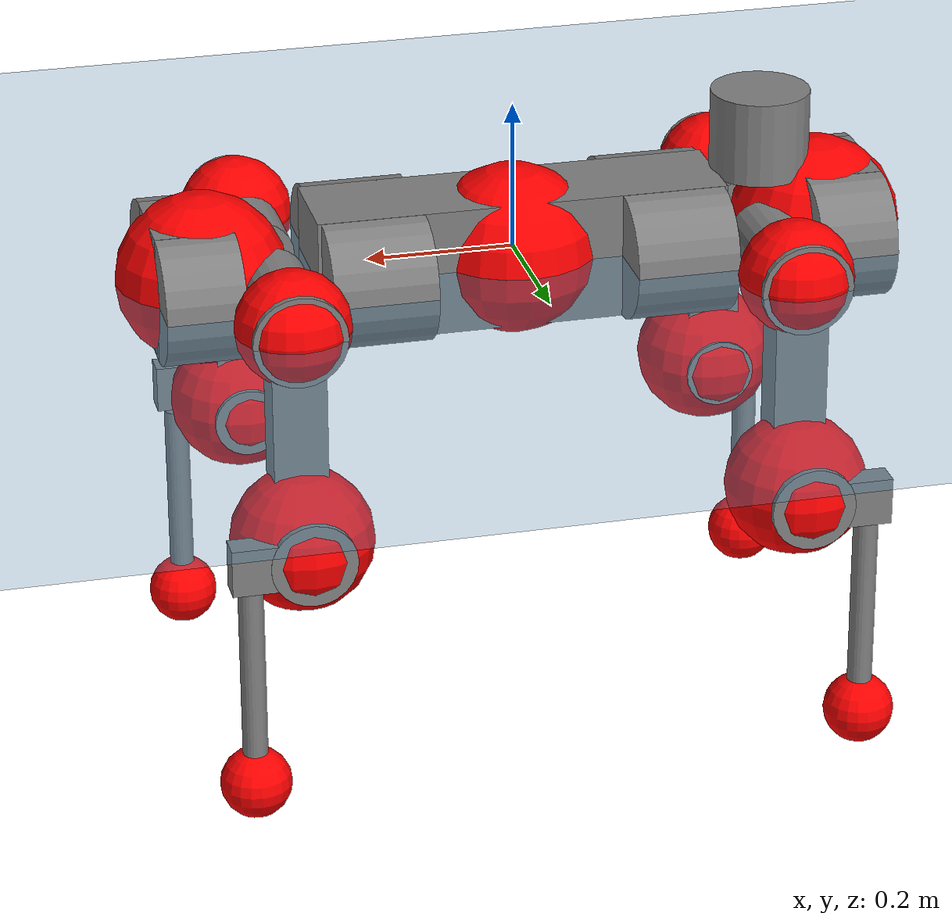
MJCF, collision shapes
<mujoco model="anymal_c">
  <compiler angle="radian" assetdir="assets" balanceinertia="true" inertiafromgeom="false"/>

  <option timestep="0.005" density="1.2" viscosity="2e-05"/>

  <size nkey="1"/>

  <visual>
    <quality shadowsize="8192"/>
    <map shadowclip="0.5"/>
  </visual>

  <default>
    <default class="/">
      <material specular="0" shininess="0.25"/>
      <geom contype="0" conaffinity="0" group="1" solref="-1000 -80"/>
      <site size="0.01 0.005 0.005" group="5"/>
      <general forcelimited="true" forcerange="-80 80" biastype="affine" gainprm="80" biasprm="0 -80 -2"/>
      <default class="anymal_c">
        <joint armature="0.01" damping="0.01" frictionloss="0.1"/>
        <default class="visual">
          <geom type="mesh" group="2"/>
          <default class="visual_zflip"/>
        </default>
        <default class="collision">
          <geom type="cylinder" group="3"/>
          <default class="foot">
            <geom size="0.03 0 0" type="sphere" condim="6" priority="1" friction="0.8 0.02 0.01" solimp="0.015 1 0.03"/>
          </default>
        </default>
      </default>
      <default class="reward_collision_sphere">
        <geom group="5" rgba="1 0 0 1"/>
      </default>
    </default>
  </default>

  <asset>
    <texture type="skybox" colorspace="auto" name="//unnamed_texture_0" builtin="gradient" rgb1="0.95 0.95 0.95" rgb2="0.95 0.95 0.95" width="100" height="600"/>
    <texture type="2d" colorspace="auto" name="texplane" builtin="checker" rgb1="0.345 0.575 0.748" rgb2="0.345 0.575 0.748" markrgb="1 1 1" width="512" height="512"/>
    <texture type="2d" colorspace="linear" name="base" file="base.png"/>
    <texture type="2d" colorspace="linear" name="top_shell" file="top_shell.png"/>
    <texture type="2d" colorspace="linear" name="bottom_shell" file="bottom_shell.png"/>
    <texture type="2d" colorspace="linear" name="remote" file="remote.png"/>
    <texture type="2d" colorspace="linear" name="hatch" file="hatch.png"/>
    <texture type="2d" colorspace="linear" name="handle" file="handle.png"/>
    <texture type="2d" colorspace="linear" name="face" file="face.png"/>
    <texture type="2d" colorspace="linear" name="battery" file="battery.png"/>
    <texture type="2d" colorspace="linear" name="lidar_cage" file="lidar_cage.png"/>
    <texture type="2d" colorspace="linear" name="depth_camera" file="depth_camera.png"/>
    <texture type="2d" colorspace="linear" name="wide_angle_camera" file="wide_angle_camera.png"/>
    <texture type="2d" colorspace="linear" name="lidar" file="lidar.png"/>
    <texture type="2d" colorspace="linear" name="drive" file="drive.png"/>
    <texture type="2d" colorspace="linear" name="hip_l" file="hip_l.png"/>
    <texture type="2d" colorspace="linear" name="shank_l" file="shank_l.png"/>
    <texture type="2d" colorspace="linear" name="foot" file="foot.png"/>
    <texture type="2d" colorspace="linear" name="thigh" file="thigh.png"/>
    <texture type="2d" colorspace="linear" name="shank_r" file="shank_r.png"/>
    <texture type="2d" colorspace="linear" name="hip_r" file="hip_r.png"/>
    <material name="MatPlane" class="/" texture="texplane" texuniform="true" texrepeat="2 2" specular="0.9" shininess="0.5"/>
    <material name="black_plastic" class="/" rgba="0.007 0.007 0.007 1"/>
    <material name="green" class="/" rgba="0.052 0.178 0.033 1"/>
    <material name="red" class="/" rgba="0.178 0.006 0.005 1"/>
    <material name="yellow" class="/" rgba="0.178 0.119 0.006 1"/>
    <material name="lwl" class="/" rgba="0.8 0.8 0.8 1"/>
    <material name="base" class="/" texture="base"/>
    <material name="top_shell" class="/" texture="top_shell"/>
    <material name="bottom_shell" class="/" texture="bottom_shell"/>
    <material name="hip_l" class="/" texture="hip_l"/>
    <material name="thigh" class="/" texture="thigh"/>
    <material name="shank_l" class="/" texture="shank_l"/>
    <material name="foot" class="/" texture="foot"/>
    <material name="hip_r" class="/" texture="hip_r"/>
    <material name="shank" class="/" texture="shank_r"/>
    <material name="hatch" class="/" texture="hatch"/>
    <material name="remote" class="/" texture="remote"/>
    <material name="handle" class="/" texture="handle"/>
    <material name="face" class="/" texture="face"/>
    <material name="depth_camera" class="/" texture="depth_camera"/>
    <material name="wide_angle_camera" class="/" texture="wide_angle_camera"/>
    <material name="battery" class="/" texture="battery"/>
    <material name="lidar_cage" class="/" texture="lidar_cage"/>
    <material name="lidar" class="/" texture="lidar"/>
    <material name="drive" class="/" texture="drive"/>
    <mesh name="base_0" class="/" file="base_0.obj"/>
    <mesh name="base_1" class="/" file="base_1.obj"/>
    <mesh name="base_2" class="/" file="base_2.obj"/>
    <mesh name="base_3" class="/" file="base_3.obj"/>
    <mesh name="base_4" class="/" file="base_4.obj"/>
    <mesh name="base_5" class="/" file="base_5.obj"/>
    <mesh name="top_shell" class="/" file="top_shell.obj"/>
    <mesh name="bottom_shell" class="/" file="bottom_shell.obj"/>
    <mesh name="remote" class="/" file="remote.obj"/>
    <mesh name="handle" class="/" file="handle.obj"/>
    <mesh name="face" class="/" file="face.obj"/>
    <mesh name="wide_angle_camera" class="/" file="wide_angle_camera.obj"/>
    <mesh name="depth_camera" class="/" file="depth_camera.obj"/>
    <mesh name="battery" class="/" file="battery.obj"/>
    <mesh name="lidar_cage" class="/" file="lidar_cage.obj"/>
    <mesh name="lidar" class="/" file="lidar.obj"/>
    <mesh name="drive" class="/" file="drive.obj"/>
    <mesh name="hip_l" class="/" file="hip_l.obj"/>
    <mesh name="thigh" class="/" file="thigh.obj"/>
    <mesh name="shank_l" class="/" file="shank_l.obj"/>
    <mesh name="foot" class="/" file="foot.obj"/>
    <mesh name="hip_r" class="/" file="hip_r.obj"/>
    <mesh name="hatch" class="/" file="hatch.obj"/>
    <mesh name="shank_r" class="/" file="shank_r.obj"/>
  </asset>

  <worldbody>
    <geom name="floor" class="/" size="100 100 0.125" type="plane" group="0" material="MatPlane"/>
    <light name="toplight_shadow" class="/" pos="0 0 5" dir="0.0990148 0.0990148 -0.990148" type="directional" ambient="0.04 0.04 0.04" diffuse="0.55 0.55 0.55" specular="0.12 0.12 0.12"/>
    <light name="toplight_fill" class="/" pos="0 0 5" dir="0.0990148 0.0990148 -0.990148" type="directional" castshadow="false" ambient="0.04 0.04 0.04" diffuse="0.3 0.3 0.3" specular="0.08 0.08 0.08"/>
    <body name="trunk" childclass="anymal_c" pos="2.10134e-07 -9.48072e-05 -0.00134392" quat="1 -1.84483e-05 0.000154331 7.8594e-05">
      <inertial pos="0.00268348 0.0024835 0.0511735" quat="0.500177 0.49984 0.500378 0.499605" mass="16.6031" diaginertia="0.4664 0.406209 0.233687"/>
      <joint name="//unnamed_joint_0" type="free" armature="0" damping="0" frictionloss="0"/>
      <geom name="//unnamed_geom_1" class="visual" material="green" mesh="base_0"/>
      <geom name="//unnamed_geom_2" class="visual" material="yellow" mesh="base_1"/>
      <geom name="//unnamed_geom_3" class="visual" material="red" mesh="base_2"/>
      <geom name="//unnamed_geom_4" class="visual" material="black_plastic" mesh="base_3"/>
      <geom name="//unnamed_geom_5" class="visual" material="lwl" mesh="base_4"/>
      <geom name="//unnamed_geom_6" class="visual" material="base" mesh="base_5"/>
      <geom name="trunk_1" class="collision" size="0.2773 0.0669344 0.0860585" type="box"/>
      <geom name="trunk_2" class="collision" size="0.0860585 0.0693249" pos="0.203208 0.0642273 0" quat="0.707107 0 0.707107 0"/>
      <geom name="trunk_3" class="collision" size="0.0860585 0.0693249" pos="-0.203208 0.0642273 0" quat="0.707107 0 0.707107 0"/>
      <geom name="trunk_4" class="collision" size="0.0860585 0.0693249" pos="0.203208 -0.0642273 0" quat="0.707107 0 0.707107 0"/>
      <geom name="trunk_5" class="collision" size="0.0860585 0.0693249" pos="-0.203208 -0.0642273 0" quat="0.707107 0 0.707107 0"/>
      <geom name="//unnamed_geom_12" class="visual" material="top_shell" mesh="top_shell"/>
      <geom name="//unnamed_geom_13" class="visual" material="bottom_shell" mesh="bottom_shell"/>
      <geom name="//unnamed_geom_14" class="visual" material="remote" mesh="remote"/>
      <geom name="//unnamed_geom_15" class="visual" material="handle" mesh="handle"/>
      <geom name="//unnamed_geom_16" class="visual" pos="0.387262 0 0" quat="1 0 0 0" material="face" mesh="face"/>
      <geom name="trunk_6" class="collision" size="0.0525913 0.0669344 0.0860585" pos="0.438648 0 0" type="box"/>
      <geom name="//unnamed_geom_18" class="collision" size="0.0860585 0.0525913" pos="0.438648 0.0642273 0" quat="0.707107 0 0.707107 0"/>
      <geom name="//unnamed_geom_19" class="collision" size="0.0860585 0.0525913" pos="0.438648 -0.0642273 0" quat="0.707107 0 0.707107 0"/>
      <geom name="//unnamed_geom_20" class="visual" pos="0.431317 0 -0.0303175" quat="0.965926 0 0.258819 0" material="depth_camera" mesh="depth_camera"/>
      <geom name="//unnamed_geom_21" class="visual" pos="0.479289 0 0.0152214" material="wide_angle_camera" mesh="wide_angle_camera"/>
      <geom name="//unnamed_geom_22" class="visual_zflip" pos="-0.387262 0 0" quat="0 0 0 1" material="face" mesh="face"/>
      <geom name="trunk_7" class="collision" size="0.0525913 0.0669344 0.0860585" pos="-0.438648 0 0" quat="0 0 0 1" type="box"/>
      <geom name="//unnamed_geom_24" class="collision" size="0.0860585 0.0525913" pos="-0.438648 -0.0642273 0" quat="0 -0.707107 0 0.707107"/>
      <geom name="//unnamed_geom_25" class="collision" size="0.0860585 0.0525913" pos="-0.438648 0.0642273 0" quat="0 -0.707107 0 0.707107"/>
      <geom name="//unnamed_geom_26" class="visual" pos="-0.431317 0 -0.0303175" quat="0 -0.258819 0 0.965926" material="depth_camera" mesh="depth_camera"/>
      <geom name="//unnamed_geom_27" class="visual_zflip" pos="-0.479289 0 0.0152214" quat="0 0 0 1" material="wide_angle_camera" mesh="wide_angle_camera"/>
      <geom name="//unnamed_geom_28" class="visual" material="battery" mesh="battery"/>
      <geom name="//unnamed_geom_29" class="visual" pos="0 0.0699381 0.0289109" quat="0.683013 -0.183013 0.183013 0.683013" material="depth_camera" mesh="depth_camera"/>
      <geom name="//unnamed_geom_30" class="visual" pos="0 -0.0699381 0.0289109" quat="0.683013 0.183013 0.183013 -0.683013" material="depth_camera" mesh="depth_camera"/>
      <geom name="//unnamed_geom_31" class="visual" pos="-0.340081 0 0.0747345" quat="1 0 0 0" material="lidar_cage" mesh="lidar_cage"/>
      <geom name="trunk_8" class="collision" size="0.0669344 0.0573723" pos="-0.340081 0 0.135742"/>
      <geom name="//unnamed_geom_33" class="visual" pos="-0.340081 -6.58267e-06 0.144588" quat="0.707107 0 0 -0.707107" material="lidar" mesh="lidar"/>
      <geom name="//unnamed_geom_34" class="visual" pos="0.280193 0.0954586 -1.71232e-09" quat="0.258819 0.965926 0 0" material="drive" mesh="drive"/>
      <geom name="//unnamed_geom_35" class="visual" pos="0.280193 -0.0954586 1.71232e-09" quat="0.258819 -0.965926 0 0" material="drive" mesh="drive"/>
      <geom name="//unnamed_geom_36" class="visual" pos="-0.280193 0.0954586 1.71232e-09" quat="0 0 0.965926 -0.258819" material="drive" mesh="drive"/>
      <geom name="//unnamed_geom_37" class="visual" pos="-0.280193 -0.0954586 -1.71232e-09" quat="0 0 -0.965926 -0.258819" material="drive" mesh="drive"/>
      <geom name="//unnamed_geom_38" class="visual" pos="0.108377 0 0.0742261" quat="1 0 0 0" material="hatch" mesh="hatch"/>
      <geom name="//unnamed_geom_39" class="reward_collision_sphere" size="0.114745"/>
      <geom name="//unnamed_geom_40" class="reward_collision_sphere" size="0.114745" pos="0.420429 0 0"/>
      <geom name="//unnamed_geom_41" class="reward_collision_sphere" size="0.114745" pos="-0.420429 0 0"/>
      <site name="imu" pos="0.227702 0.00652031 0.042866" size="0.00956205"/>
      <camera name="track" pos="0 -1.83506 0" quat="0.707107 0.707107 0 0" mode="trackcom"/>
      <camera name="ego_camera" pos="0.420429 0 -0.0406719" quat="-0.5 -0.5 0.5 0.5"/>
      <body name="LF_HIP" pos="0.280607 0.0954003 6.17835e-05" quat="0.258672 0.965965 -0.000581132 -2.17998e-05">
        <inertial pos="0.050795 -0.0139058 -0.00828786" quat="-0.128823 0.70966 -0.13434 0.679514" mass="2.49545" diaginertia="0.00423092 0.00323656 0.00364086"/>
        <joint name="LF_HAA" pos="0 0 0" axis="1 0.000842323 0.000466045" range="-0.708075 0.493603" armature="0.00988795" damping="0.0107425" frictionloss="0.0856515"/>
        <geom name="//unnamed_geom_42" class="visual" pos="0 -0.000100728 1.65445e-05" quat="0.258819 -0.965926 0 0" material="hip_l" mesh="hip_l"/>
        <geom name="//unnamed_geom_43" class="visual" pos="0.0559638 -0.0676267 -0.0397785" quat="0.183013 -0.683013 0.683013 0.183013" material="drive" mesh="drive"/>
        <geom name="//unnamed_geom_44" class="collision" size="0.0478103 0.0669344" pos="0.0559638 -0.0109735 -0.00702098" quat="-0.353553 -0.612372 0.612372 -0.353553"/>
        <body name="LF_THIGH" pos="0.0563636 -0.0662626 -0.04278" quat="0.182807 -0.683194 0.682874 0.183061">
          <inertial pos="0.0288032 0.000374385 -0.249931" quat="0.993122 -0.00565308 -0.0826138 0.0827732" mass="2.57233" diaginertia="0.0215577 0.0192869 0.00426826"/>
          <joint name="LF_HFE" pos="0 0 0" axis="1 0.00030916 0.000826781" stiffness="0.000233764" range="-3.16554 3.12757" armature="0.00920143" damping="0.0083518" frictionloss="0.0970041"/>
          <geom name="//unnamed_geom_45" class="visual" pos="0.000333363 5.25302e-07 0" quat="0.707107 0 0 -0.707107" material="thigh" mesh="thigh"/>
          <geom name="//unnamed_geom_46" class="collision" size="0.0621533 0.0382482" pos="0.0373715 0 0" quat="0.5 0.5 -0.5 -0.5"/>
          <geom name="//unnamed_geom_47" class="collision" size="0.0358577 0.0286862 0.135125" pos="0.0280286 0 -0.143688" quat="0.707107 0 0 -0.707107" type="box"/>
          <geom name="//unnamed_geom_48" class="visual" pos="0.093709 0 -0.289787" quat="1 0 0 0" material="drive" mesh="drive"/>
          <geom name="//unnamed_geom_49" class="collision" size="0.0478103 0.0669344" pos="0.0283089 0 -0.289787" quat="0.707107 0 0.707107 0"/>
          <geom name="//unnamed_geom_50" class="reward_collision_sphere" size="0.0764964" pos="0.0233572 0 0"/>
          <body name="LF_SHANK" pos="0.0944161 0.000554489 -0.288847" quat="0.999999 0.000217061 -0.00125739 -0.000298035">
            <inertial pos="0.00456122 -0.0562435 -0.0821456" quat="0.992913 -0.116085 -0.000999947 -0.0254351" mass="0.509922" diaginertia="0.00724299 0.00586704 0.00120058"/>
            <joint name="LF_KFE" pos="0 0 0" axis="0.999993 -0.00351294 0.0011578" range="-3.14089 3.15081" armature="0.00982278" damping="0.019458" frictionloss="0.0890945"/>
            <geom name="//unnamed_geom_51" class="visual" pos="0.000108702 0.000579606 0" quat="0.707107 0 0 -0.707107" material="shank_l" mesh="shank_l"/>
            <geom name="LF_kfe_act" class="collision" size="0.0573723 0.0191241" pos="0.0186857 0 0" quat="0.5 0.5 -0.5 -0.5"/>
            <geom name="//unnamed_geom_53" class="collision" size="0.0549809 0.0322719 0.0181679" pos="0.0186857 -0.0527572 0" quat="0.5 0.5 -0.5 -0.5" type="box"/>
            <geom name="//unnamed_geom_54" class="visual" pos="0.0121924 -0.0805102 -0.343647" quat="0.382683 0 0 -0.92388" material="foot" mesh="foot"/>
            <geom name="LF_calf" class="collision" size="0.0167336 0.135066" pos="0.0121925 -0.080697 -0.171823" quat="0.707107 0 0 -0.707107"/>
            <geom name="LF_foot" class="foot" size="0.0311056" pos="0.0121925 -0.080697 -0.320769" quat="0.707107 0 0 -0.707107"/>
            <geom name="//unnamed_geom_57" class="reward_collision_sphere" size="0.0956205" pos="-0.0467144 0 0"/>
            <geom name="//unnamed_geom_58" class="reward_collision_sphere" size="0.0478103" pos="0.0121925 -0.080697 -0.320769"/>
            <site name="LF_foot" class="foot" pos="0.0121925 -0.080697 -0.320769" quat="0.707107 0 0 -0.707107" size="0.00956205"/>
          </body>
        </body>
      </body>
      <body name="RF_HIP" pos="0.279916 -0.0963582 0.00091038" quat="0.259401 -0.965769 0.000566696 0.000207688">
        <inertial pos="0.0533422 0.0139269 -0.00792011" quat="0.134099 0.679837 0.127192 0.709692" mass="2.32757" diaginertia="0.00401975 0.00310941 0.00357396"/>
        <joint name="RF_HAA" pos="0 0 0" axis="0.999995 0.00302126 -0.000480063" range="-0.459091 0.672683" armature="0.00959454" damping="0.00402993" frictionloss="0.0915445"/>
        <geom name="//unnamed_geom_59" class="visual" pos="0 0.000100727 1.65444e-05" quat="0.258819 0.965926 0 0" material="hip_r" mesh="hip_r"/>
        <geom name="//unnamed_geom_60" class="visual" pos="0.0559638 0.0676267 -0.0397785" quat="0.183013 0.683013 0.683013 -0.183013" material="drive" mesh="drive"/>
        <geom name="//unnamed_geom_61" class="collision" size="0.0478103 0.0669344" pos="0.0559638 0.0109735 -0.00702098" quat="-0.353553 0.612372 0.612372 0.353553"/>
        <body name="RF_THIGH" pos="0.0588832 0.0667701 -0.0425547" quat="0.183139 0.683117 0.682797 -0.183301">
          <inertial pos="0.029146 0.000159656 -0.249575" quat="0.992774 -0.00466294 -0.0815665 0.0878937" mass="2.77742" diaginertia="0.0215542 0.0202142 0.00465535"/>
          <joint name="RF_HFE" pos="0 0 0" axis="0.999924 -0.000125907 -0.0123288" stiffness="0.00630699" range="-3.08973 3.08944" armature="0.00961646" damping="0" frictionloss="0.100196"/>
          <geom name="//unnamed_geom_62" class="visual" pos="0.000333363 5.25302e-07 0" quat="0.707107 0 0 -0.707107" material="thigh" mesh="thigh"/>
          <geom name="//unnamed_geom_63" class="collision" size="0.0621533 0.0382482" pos="0.0373715 0 0" quat="0.5 0.5 0.5 0.5"/>
          <geom name="//unnamed_geom_64" class="collision" size="0.0358577 0.0286862 0.135125" pos="0.0280286 0 -0.143688" quat="0.707107 0 0 0.707107" type="box"/>
          <geom name="//unnamed_geom_65" class="visual" pos="0.093709 0 -0.289787" quat="1 0 0 0" material="drive" mesh="drive"/>
          <geom name="//unnamed_geom_66" class="collision" size="0.0478103 0.0669344" pos="0.0283089 0 -0.289787" quat="0.707107 0 0.707107 0"/>
          <geom name="//unnamed_geom_67" class="reward_collision_sphere" size="0.0764964" pos="0.0233572 0 0"/>
          <body name="RF_SHANK" pos="0.0960505 -0.00111494 -0.289592" quat="1 -0.000326647 -2.7903e-05 5.83394e-05">
            <inertial pos="0.00619543 0.0571704 -0.079218" quat="0.99307 0.115526 0.00240471 0.0214487" mass="0.496249" diaginertia="0.00726285 0.00597468 0.00121038"/>
            <joint name="RF_KFE" pos="0 0 0" axis="0.999902 0.0131873 0.0046179" range="-3.15577 3.09477" armature="0.00966684" damping="0.00752915" frictionloss="0.0829833"/>
            <geom name="//unnamed_geom_68" class="visual" pos="0.000108702 -0.000579605 0" quat="0.707107 0 0 0.707107" material="shank" mesh="shank_r"/>
            <geom name="RF_kfe_act" class="collision" size="0.0573723 0.0191241" pos="0.0186857 0 0" quat="0.5 0.5 0.5 0.5"/>
            <geom name="//unnamed_geom_70" class="collision" size="0.0549809 0.0322719 0.0181679" pos="0.0186857 0.0527572 0" quat="0.5 0.5 0.5 0.5" type="box"/>
            <geom name="//unnamed_geom_71" class="visual" pos="0.0121925 0.0805102 -0.343647" quat="0.382683 0 0 0.92388" material="foot" mesh="foot"/>
            <geom name="RF_calf" class="collision" size="0.0167336 0.135066" pos="0.0121925 0.080697 -0.171823" quat="0.707107 0 0 0.707107"/>
            <geom name="RF_foot" class="foot" size="0.0289138" pos="0.0121925 0.080697 -0.320769" quat="0.707107 0 0 0.707107"/>
            <geom name="//unnamed_geom_74" class="reward_collision_sphere" size="0.0956205" pos="-0.0467144 0 0"/>
            <geom name="//unnamed_geom_75" class="reward_collision_sphere" size="0.0478103" pos="0.0121925 0.080697 -0.320769"/>
            <site name="RF_foot" class="foot" pos="0.0121925 0.080697 -0.320769" quat="0.707107 0 0 0.707107" size="0.00956205"/>
          </body>
        </body>
      </body>
      <body name="LH_HIP" pos="-0.278944 0.0971515 0.000386838" quat="4.78502e-05 -7.24684e-06 0.96592 -0.258843">
        <inertial pos="0.0532442 0.0116194 -0.0089385" quat="0.141656 0.680812 0.138156 0.705224" mass="2.35183" diaginertia="0.00412168 0.00323901 0.00359818"/>
        <joint name="LH_HAA" pos="0 0 0" axis="0.999986 -0.00156985 0.00503374" range="-0.511756 0.72855" armature="0.00965686" damping="0.00467561" frictionloss="0.0957057"/>
        <geom name="//unnamed_geom_76" class="visual" pos="0 0.000100727 1.65444e-05" quat="-0.258819 -0.965926 0 0" material="hip_r" mesh="hip_r"/>
        <geom name="//unnamed_geom_77" class="visual" pos="0.0559638 0.0676267 -0.0397785" quat="0.183013 0.683013 0.683013 -0.183013" material="drive" mesh="drive"/>
        <geom name="//unnamed_geom_78" class="collision" size="0.0478103 0.0669344" pos="0.0559638 0.0109735 -0.00702098" quat="-0.353553 0.612372 0.612372 0.353553"/>
        <body name="LH_THIGH" pos="0.0552563 0.0643502 -0.0425098" quat="0.182909 0.682785 0.683247 -0.183092">
          <inertial pos="0.0298371 -0.00142109 -0.249728" quat="0.992805 -0.00202949 -0.0822381 0.0870134" mass="2.70077" diaginertia="0.0223741 0.0199778 0.00467959"/>
          <joint name="LH_HFE" pos="0 0 0" axis="0.999995 -0.00312017 -0.000568116" range="-3.14428 3.13503" armature="0.00942665" damping="0.0107743" frictionloss="0.0956564"/>
          <geom name="//unnamed_geom_79" class="visual" pos="0.000333363 5.25302e-07 0" quat="0.707107 0 0 -0.707107" material="thigh" mesh="thigh"/>
          <geom name="//unnamed_geom_80" class="collision" size="0.0621533 0.0382482" pos="0.0373715 0 0" quat="0.5 0.5 -0.5 -0.5"/>
          <geom name="//unnamed_geom_81" class="collision" size="0.0358577 0.0286862 0.135125" pos="0.0280286 0 -0.143688" quat="0.707107 0 0 -0.707107" type="box"/>
          <geom name="//unnamed_geom_82" class="visual" pos="0.093709 0 -0.289787" quat="1 0 0 0" material="drive" mesh="drive"/>
          <geom name="//unnamed_geom_83" class="collision" size="0.0478103 0.0669344" pos="0.0283089 0 -0.289787" quat="0.707107 0 0.707107 0"/>
          <geom name="//unnamed_geom_84" class="reward_collision_sphere" size="0.0764964" pos="0.0233572 0 0"/>
          <body name="LH_SHANK" pos="0.095303 -0.000531067 -0.290013" quat="1 -0.00053161 -0.000246121 0.000588314">
            <inertial pos="0.00686084 0.0570582 -0.0831315" quat="0.992909 0.116151 -0.000876442 0.0252831" mass="0.515785" diaginertia="0.00756833 0.00639323 0.00129736"/>
            <joint name="LH_KFE" pos="0 0 0" axis="0.999996 0.00246978 0.00102798" range="-3.14908 3.08806" armature="0.00947859" damping="0.0172437" frictionloss="0.0946737"/>
            <geom name="//unnamed_geom_85" class="visual" pos="0.000108702 -0.000579605 0" quat="-0.707107 0 0 -0.707107" material="shank" mesh="shank_r"/>
            <geom name="LH_kfe_act" class="collision" size="0.0573723 0.0191241" pos="0.0186857 0 0" quat="0.5 0.5 -0.5 -0.5"/>
            <geom name="//unnamed_geom_87" class="collision" size="0.0549809 0.0322719 0.0181679" pos="0.0186857 0.0527572 0" quat="0.5 0.5 -0.5 -0.5" type="box"/>
            <geom name="//unnamed_geom_88" class="visual" pos="0.0121925 0.0805102 -0.343647" quat="-0.382683 0 0 -0.92388" material="foot" mesh="foot"/>
            <geom name="LH_calf" class="collision" size="0.0167336 0.135066" pos="0.0121925 0.080697 -0.171823" quat="0.707107 0 0 -0.707107"/>
            <geom name="LH_foot" class="foot" size="0.0271391" pos="0.0121925 0.080697 -0.320769" quat="0.707107 0 0 -0.707107"/>
            <geom name="//unnamed_geom_91" class="reward_collision_sphere" size="0.0956205" pos="-0.0467144 0 0"/>
            <geom name="//unnamed_geom_92" class="reward_collision_sphere" size="0.0478103" pos="0.0121925 0.080697 -0.320769"/>
            <site name="LH_foot" class="foot" pos="0.0121925 0.080697 -0.320769" quat="0.707107 0 0 -0.707107" size="0.00956205"/>
          </body>
        </body>
      </body>
      <body name="RH_HIP" pos="-0.279889 -0.093902 -0.000852366" quat="-0.00113414 0.000256505 -0.965816 -0.259227">
        <inertial pos="0.0520552 -0.0143399 -0.00826228" quat="-0.136095 0.709167 -0.124918 0.680408" mass="2.43346" diaginertia="0.00415685 0.00316527 0.00353048"/>
        <joint name="RH_HAA" pos="0 0 0" axis="0.999995 -0.00234733 -0.00233931" range="-0.767872 0.471435" armature="0.0083674" damping="0.0130141" frictionloss="0.099273"/>
        <geom name="//unnamed_geom_93" class="visual" pos="0 -0.000100728 1.65445e-05" quat="-0.258819 0.965926 0 0" material="hip_l" mesh="hip_l"/>
        <geom name="//unnamed_geom_94" class="visual" pos="0.0559638 -0.0676267 -0.0397785" quat="-0.183013 0.683013 -0.683013 -0.183013" material="drive" mesh="drive"/>
        <geom name="//unnamed_geom_95" class="collision" size="0.0478103 0.0669344" pos="0.0559638 -0.0109735 -0.00702098" quat="0.353553 0.612372 -0.612372 0.353553"/>
        <body name="RH_THIGH" pos="0.0560461 -0.0662736 -0.0450834" quat="-0.182984 0.683014 -0.683019 -0.183014">
          <inertial pos="0.028958 0.00259793 -0.249206" quat="0.993534 -0.00351205 -0.0723334 0.0874403" mass="2.59406" diaginertia="0.0206781 0.0187663 0.00437947"/>
          <joint name="RH_HFE" pos="0 0 0" axis="0.999983 0.0016686 0.00553888" stiffness="0.00313304" range="-3.15252 3.09397" armature="0.01095" damping="0.0090171" frictionloss="0.0907028"/>
          <geom name="//unnamed_geom_96" class="visual" pos="0.000333363 5.25302e-07 0" quat="0.707107 0 0 -0.707107" material="thigh" mesh="thigh"/>
          <geom name="//unnamed_geom_97" class="collision" size="0.0621533 0.0382482" pos="0.0373715 0 0" quat="0.5 0.5 0.5 0.5"/>
          <geom name="//unnamed_geom_98" class="collision" size="0.0358577 0.0286862 0.135125" pos="0.0280286 0 -0.143688" quat="0.707107 0 0 0.707107" type="box"/>
          <geom name="//unnamed_geom_99" class="visual" pos="0.093709 0 -0.289787" quat="1 0 0 0" material="drive" mesh="drive"/>
          <geom name="//unnamed_geom_100" class="collision" size="0.0478103 0.0669344" pos="0.0283089 0 -0.289787" quat="0.707107 0 0.707107 0"/>
          <geom name="//unnamed_geom_101" class="reward_collision_sphere" size="0.0764964" pos="0.0233572 0 0"/>
          <body name="RH_SHANK" pos="0.0925158 -0.00114229 -0.290854" quat="1 -0.000182054 0.000690862 0.000374517">
            <inertial pos="0.00514041 -0.0558114 -0.082135" quat="0.991371 -0.127193 -0.00051948 -0.0317106" mass="0.499337" diaginertia="0.00718001 0.00609235 0.00125781"/>
            <joint name="RH_KFE" pos="0 0 0" axis="0.999973 0.00445295 0.00592124" stiffness="0.00787637" range="-3.08576 3.18179" armature="0.00933139" damping="0.00797557" frictionloss="0.0942115"/>
            <geom name="//unnamed_geom_102" class="visual" pos="0.000108702 0.000579606 0" quat="0.707107 0 0 -0.707107" material="shank_l" mesh="shank_l"/>
            <geom name="RH_kfe_act" class="collision" size="0.0573723 0.0191241" pos="0.0186857 0 0" quat="0.5 0.5 0.5 0.5"/>
            <geom name="//unnamed_geom_104" class="collision" size="0.0549809 0.0322719 0.0181679" pos="0.0186857 -0.0527572 0" quat="0.5 0.5 0.5 0.5" type="box"/>
            <geom name="//unnamed_geom_105" class="visual" pos="0.0121924 -0.0805102 -0.343647" quat="0.382683 0 0 -0.92388" material="foot" mesh="foot"/>
            <geom name="RH_calf" class="collision" size="0.0167336 0.135066" pos="0.0121925 -0.080697 -0.171823" quat="0.707107 0 0 0.707107"/>
            <geom name="RH_foot" class="foot" size="0.0248003" pos="0.0121925 -0.080697 -0.320769" quat="0.707107 0 0 0.707107"/>
            <geom name="//unnamed_geom_108" class="reward_collision_sphere" size="0.0956205" pos="-0.0467144 0 0"/>
            <geom name="//unnamed_geom_109" class="reward_collision_sphere" size="0.0478103" pos="0.0121925 -0.080697 -0.320769"/>
            <site name="RH_foot" class="foot" pos="0.0121925 -0.080697 -0.320769" quat="0.707107 0 0 0.707107" size="0.00956205"/>
          </body>
        </body>
      </body>
    </body>
  </worldbody>

  <contact>
    <pair class="/" geom1="floor" geom2="LF_foot" name="//unnamed_contact_0"/>
    <pair class="/" geom1="floor" geom2="RF_foot" name="//unnamed_contact_1"/>
    <pair class="/" geom1="floor" geom2="LH_foot" name="//unnamed_contact_2"/>
    <pair class="/" geom1="floor" geom2="RH_foot" name="//unnamed_contact_3"/>
  </contact>

  <actuator>
    <general name="LF_HAA" class="/" joint="LF_HAA" forcerange="-77.0147 77.0147" gainprm="81.9549" biasprm="0 -81.9549 -1.93798"/>
    <general name="LF_HFE" class="/" joint="LF_HFE" forcerange="-69.0175 69.0175" gainprm="81.9549" biasprm="0 -81.9549 -1.93798"/>
    <general name="LF_KFE" class="/" joint="LF_KFE" forcerange="-74.0061 74.0061" gainprm="81.9549" biasprm="0 -81.9549 -1.93798"/>
    <general name="RF_HAA" class="/" joint="RF_HAA" forcerange="-80.1433 80.1433" gainprm="81.9549" biasprm="0 -81.9549 -1.93798"/>
    <general name="RF_HFE" class="/" joint="RF_HFE" forcerange="-75.9704 75.9704" gainprm="81.9549" biasprm="0 -81.9549 -1.93798"/>
    <general name="RF_KFE" class="/" joint="RF_KFE" forcerange="-77.891 77.891" gainprm="81.9549" biasprm="0 -81.9549 -1.93798"/>
    <general name="LH_HAA" class="/" joint="LH_HAA" forcerange="-80.0917 80.0917" gainprm="81.9549" biasprm="0 -81.9549 -1.93798"/>
    <general name="LH_HFE" class="/" joint="LH_HFE" forcerange="-76.9633 76.9633" gainprm="81.9549" biasprm="0 -81.9549 -1.93798"/>
    <general name="LH_KFE" class="/" joint="LH_KFE" forcerange="-77.9364 77.9364" gainprm="81.9549" biasprm="0 -81.9549 -1.93798"/>
    <general name="RH_HAA" class="/" joint="RH_HAA" forcerange="-69.3198 69.3198" gainprm="81.9549" biasprm="0 -81.9549 -1.93798"/>
    <general name="RH_HFE" class="/" joint="RH_HFE" forcerange="-78.0845 78.0845" gainprm="81.9549" biasprm="0 -81.9549 -1.93798"/>
    <general name="RH_KFE" class="/" joint="RH_KFE" forcerange="-79.0441 79.0441" gainprm="81.9549" biasprm="0 -81.9549 -1.93798"/>
  </actuator>

  <sensor>
    <gyro site="imu" name="imu_angular_velocity"/>
    <velocimeter site="imu" name="imu_linear_velocity"/>
    <framelinvel objtype="site" objname="LF_foot" name="LF_foot_global_linear_velocity"/>
    <framelinvel objtype="site" objname="RF_foot" name="RF_foot_global_linear_velocity"/>
    <framelinvel objtype="site" objname="LH_foot" name="LH_foot_global_linear_velocity"/>
    <framelinvel objtype="site" objname="RH_foot" name="RH_foot_global_linear_velocity"/>
  </sensor>

  <keyframe>
    <key name="home" qpos="0 0 0.55 1 0 0 0 0 0.4 -0.8 0 -0.4 0.8 0 -0.4 0.8 0 0.4 -0.8"/>
  </keyframe>
</mujoco>
